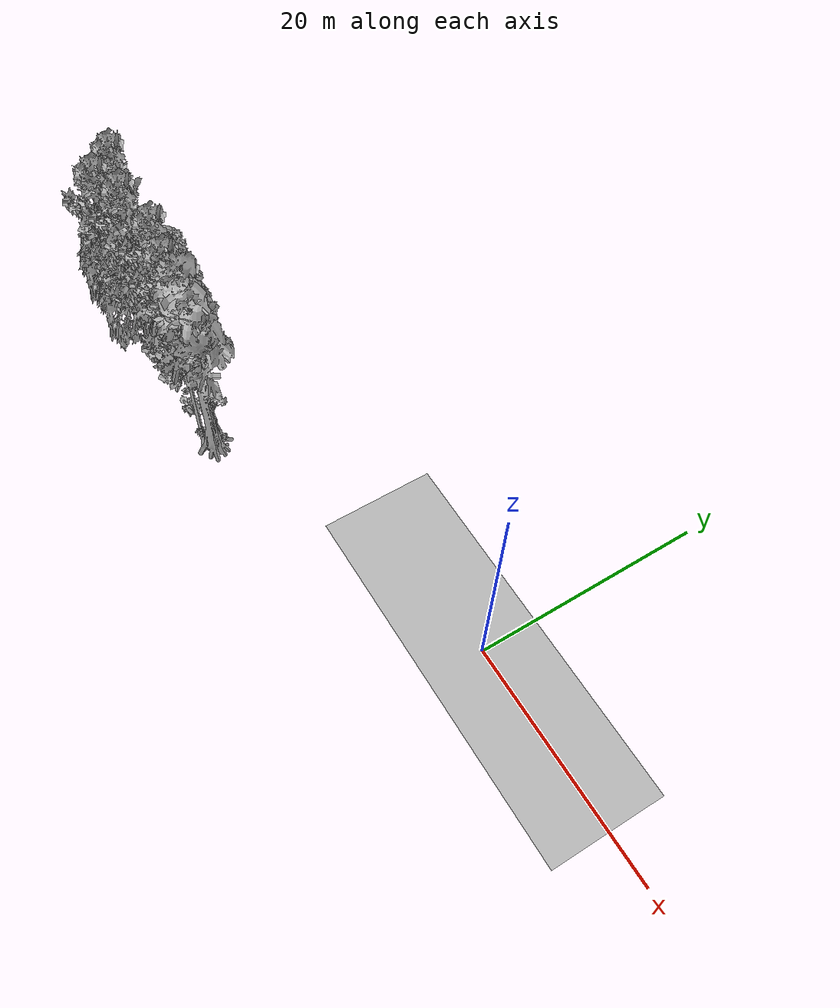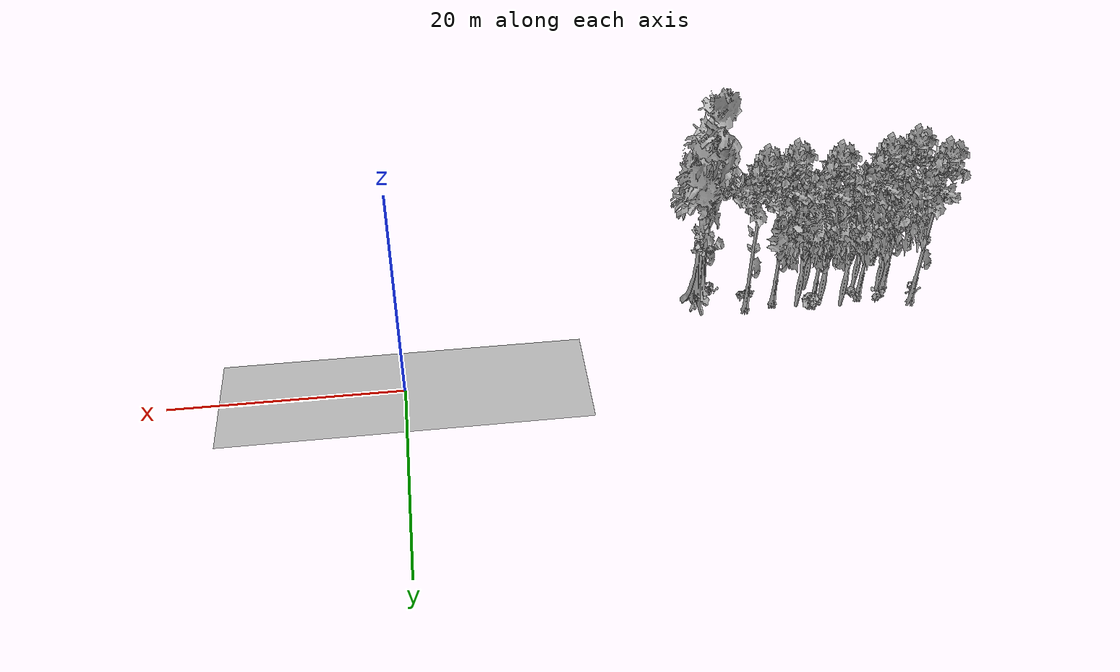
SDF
<sdf version="1.7">
 <world name="default">
  <model name="ground_plane">
   <static>1</static>
   <link name="link">
    <collision name="collision">
     <geometry><plane><normal>0 0 1</normal><size>100 100</size></plane></geometry>
     <surface><contact><ode><min_depth>0.01</min_depth><max_vel>0</max_vel></ode></contact></surface>
    </collision>
    <visual name="grass">
     <cast_shadows>0</cast_shadows>
     <geometry>
      <mesh>
       <scale>0.5814285714285714 0.18142857142857144 0.1</scale>
       <uri>file://grass_plane/meshes/grass_plane.dae</uri>
      </mesh>
     </geometry>
    </visual>
   </link>
  </model>
  <model name="Tree 23">
   <static>1</static>
   <pose>-28.04856181168212 -9.812862575359784 0 1.57079 -0 0</pose>
   <link name="link">
    <collision name="collision">
     <geometry><mesh><scale>3.5 5 3.5</scale><uri>model://tree_9/meshes/tree_9.obj</uri></mesh></geometry>
    </collision>
    <visual name="visual">
     <geometry><mesh><scale>3.5 5 3.5</scale><uri>model://tree_9/meshes/tree_9.obj</uri></mesh></geometry>
    </visual>
   </link>
  </model>
  <model name="Tree 100">
   <static>1</static>
   <pose>-27.38944371867749 -9.04333342087028 0 1.57079 -0 0</pose>
   <link name="link">
    <collision name="collision">
     <geometry><mesh><scale>3.5 5 3.5</scale><uri>model://tree_4/meshes/tree_4.obj</uri></mesh></geometry>
    </collision>
    <visual name="visual">
     <geometry><mesh><scale>3.5 5 3.5</scale><uri>model://tree_4/meshes/tree_4.obj</uri></mesh></geometry>
    </visual>
   </link>
  </model>
  <model name="Tree 107">
   <static>1</static>
   <pose>-34.437926285458566 -8.02422393529767 0 1.57079 -0 0</pose>
   <link name="link">
    <collision name="collision">
     <geometry><mesh><scale>3.5 5 3.5</scale><uri>model://tree_9/meshes/tree_9.obj</uri></mesh></geometry>
    </collision>
    <visual name="visual">
     <geometry><mesh><scale>3.5 5 3.5</scale><uri>model://tree_9/meshes/tree_9.obj</uri></mesh></geometry>
    </visual>
   </link>
  </model>
  <model name="Tree 142">
   <static>1</static>
   <pose>-38.720768022775204 -7.116174014996498 0 1.57079 -0 0</pose>
   <link name="link">
    <collision name="collision">
     <geometry><mesh><scale>3.5 5 3.5</scale><uri>model://tree_2/meshes/tree_2.obj</uri></mesh></geometry>
    </collision>
    <visual name="visual">
     <geometry><mesh><scale>3.5 5 3.5</scale><uri>model://tree_2/meshes/tree_2.obj</uri></mesh></geometry>
    </visual>
   </link>
  </model>
  <model name="Tree 144">
   <static>1</static>
   <pose>-44.6907328518165 -8.433108655998256 0 1.57079 -0 0</pose>
   <link name="link">
    <collision name="collision">
     <geometry><mesh><scale>3.5 5 3.5</scale><uri>model://tree_2/meshes/tree_2.obj</uri></mesh></geometry>
    </collision>
    <visual name="visual">
     <geometry><mesh><scale>3.5 5 3.5</scale><uri>model://tree_2/meshes/tree_2.obj</uri></mesh></geometry>
    </visual>
   </link>
  </model>
  <model name="Tree 145">
   <static>1</static>
   <pose>-36.53992351157194 -7.176319301843568 0 1.57079 -0 0</pose>
   <link name="link">
    <collision name="collision">
     <geometry><mesh><scale>3.5 5 3.5</scale><uri>model://tree_2/meshes/tree_2.obj</uri></mesh></geometry>
    </collision>
    <visual name="visual">
     <geometry><mesh><scale>3.5 5 3.5</scale><uri>model://tree_2/meshes/tree_2.obj</uri></mesh></geometry>
    </visual>
   </link>
  </model>
  <model name="Tree 150">
   <static>1</static>
   <pose>-38.094714004257625 -7.364880866374214 0 1.57079 -0 0</pose>
   <link name="link">
    <collision name="collision">
     <geometry><mesh><scale>3.5 5 3.5</scale><uri>model://tree_9/meshes/tree_9.obj</uri></mesh></geometry>
    </collision>
    <visual name="visual">
     <geometry><mesh><scale>3.5 5 3.5</scale><uri>model://tree_9/meshes/tree_9.obj</uri></mesh></geometry>
    </visual>
   </link>
  </model>
  <model name="Tree 176">
   <static>1</static>
   <pose>-31.70182812146802 -7.496033898375753 0 1.57079 -0 0</pose>
   <link name="link">
    <collision name="collision">
     <geometry><mesh><scale>3.5 5 3.5</scale><uri>model://tree_9/meshes/tree_9.obj</uri></mesh></geometry>
    </collision>
    <visual name="visual">
     <geometry><mesh><scale>3.5 5 3.5</scale><uri>model://tree_9/meshes/tree_9.obj</uri></mesh></geometry>
    </visual>
   </link>
  </model>
  <model name="Tree 182">
   <static>1</static>
   <pose>-47.43688102038932 -6.821704241520871 0 1.57079 -0 0</pose>
   <link name="link">
    <collision name="collision">
     <geometry><mesh><scale>3.5 5 3.5</scale><uri>model://tree_9/meshes/tree_9.obj</uri></mesh></geometry>
    </collision>
    <visual name="visual">
     <geometry><mesh><scale>3.5 5 3.5</scale><uri>model://tree_9/meshes/tree_9.obj</uri></mesh></geometry>
    </visual>
   </link>
  </model>
  <model name="Tree 234">
   <static>1</static>
   <pose>-45.53571208736912 -9.115218826406267 0 1.57079 -0 0</pose>
   <link name="link">
    <collision name="collision">
     <geometry><mesh><scale>3.5 5 3.5</scale><uri>model://tree_9/meshes/tree_9.obj</uri></mesh></geometry>
    </collision>
    <visual name="visual">
     <geometry><mesh><scale>3.5 5 3.5</scale><uri>model://tree_9/meshes/tree_9.obj</uri></mesh></geometry>
    </visual>
   </link>
  </model>
  <model name="Tree 254">
   <static>1</static>
   <pose>-40.629854869542356 -6.7492296716630005 0 1.57079 -0 0</pose>
   <link name="link">
    <collision name="collision">
     <geometry><mesh><scale>3.5 5 3.5</scale><uri>model://tree_2/meshes/tree_2.obj</uri></mesh></geometry>
    </collision>
    <visual name="visual">
     <geometry><mesh><scale>3.5 5 3.5</scale><uri>model://tree_2/meshes/tree_2.obj</uri></mesh></geometry>
    </visual>
   </link>
  </model>
  <model name="Tree 255">
   <static>1</static>
   <pose>-42.68614607503526 -7.990714010286329 0 1.57079 -0 0</pose>
   <link name="link">
    <collision name="collision">
     <geometry><mesh><scale>3.5 5 3.5</scale><uri>model://tree_9/meshes/tree_9.obj</uri></mesh></geometry>
    </collision>
    <visual name="visual">
     <geometry><mesh><scale>3.5 5 3.5</scale><uri>model://tree_9/meshes/tree_9.obj</uri></mesh></geometry>
    </visual>
   </link>
  </model>
  <model name="Tree 383">
   <static>1</static>
   <pose>-37.98099963188599 -9.53557228312613 0 1.57079 -0 0</pose>
   <link name="link">
    <collision name="collision">
     <geometry><mesh><scale>3.5 5 3.5</scale><uri>model://tree_2/meshes/tree_2.obj</uri></mesh></geometry>
    </collision>
    <visual name="visual">
     <geometry><mesh><scale>3.5 5 3.5</scale><uri>model://tree_2/meshes/tree_2.obj</uri></mesh></geometry>
    </visual>
   </link>
  </model>
  <model name="Tree 420">
   <static>1</static>
   <pose>-42.69660691430984 -9.323350493498804 0 1.57079 -0 0</pose>
   <link name="link">
    <collision name="collision">
     <geometry><mesh><scale>3.5 5 3.5</scale><uri>model://tree_2/meshes/tree_2.obj</uri></mesh></geometry>
    </collision>
    <visual name="visual">
     <geometry><mesh><scale>3.5 5 3.5</scale><uri>model://tree_2/meshes/tree_2.obj</uri></mesh></geometry>
    </visual>
   </link>
  </model>
  <model name="Bush 67">
   <static>1</static>
   <pose>-41.87051907291067 -7.93763457808141 0 1.57079 -0 0</pose>
   <link name="link">
    <collision name="collision">
     <geometry><mesh><scale>2 2 2</scale><uri>model://bush_3/meshes/bush_3.obj</uri></mesh></geometry>
     <surface><contact><collide_without_contact>false</collide_without_contact></contact></surface>
    </collision>
    <visual name="visual">
     <geometry><mesh><scale>2 2 2</scale><uri>model://bush_3/meshes/bush_3.obj</uri></mesh></geometry>
    </visual>
   </link>
  </model>
  <model name="Bush 70">
   <static>1</static>
   <pose>-31.784457031148833 -9.224915174088341 0 1.57079 -0 0</pose>
   <link name="link">
    <collision name="collision">
     <geometry><mesh><scale>2 2 2</scale><uri>model://bush_2/meshes/bush_2.obj</uri></mesh></geometry>
     <surface><contact><collide_without_contact>false</collide_without_contact></contact></surface>
    </collision>
    <visual name="visual">
     <geometry><mesh><scale>2 2 2</scale><uri>model://bush_2/meshes/bush_2.obj</uri></mesh></geometry>
    </visual>
   </link>
  </model>
  <model name="Bush 148">
   <static>1</static>
   <pose>-43.870172665662515 -6.713072541379168 0 1.57079 -0 0</pose>
   <link name="link">
    <collision name="collision">
     <geometry><mesh><scale>2 2 2</scale><uri>model://bush_0/meshes/bush_0.obj</uri></mesh></geometry>
     <surface><contact><collide_without_contact>false</collide_without_contact></contact></surface>
    </collision>
    <visual name="visual">
     <geometry><mesh><scale>2 2 2</scale><uri>model://bush_0/meshes/bush_0.obj</uri></mesh></geometry>
    </visual>
   </link>
  </model>
  <model name="Bush 185">
   <static>1</static>
   <pose>-27.36854986178033 -8.56391185231578 0 1.57079 -0 0</pose>
   <link name="link">
    <collision name="collision">
     <geometry><mesh><scale>2 2 2</scale><uri>model://bush_4/meshes/bush_4.obj</uri></mesh></geometry>
     <surface><contact><collide_without_contact>false</collide_without_contact></contact></surface>
    </collision>
    <visual name="visual">
     <geometry><mesh><scale>2 2 2</scale><uri>model://bush_4/meshes/bush_4.obj</uri></mesh></geometry>
    </visual>
   </link>
  </model>
  <model name="Bush 189">
   <static>1</static>
   <pose>-32.40829162043363 -9.416507245272843 0 1.57079 -0 0</pose>
   <link name="link">
    <collision name="collision">
     <geometry><mesh><scale>2 2 2</scale><uri>model://bush_2/meshes/bush_2.obj</uri></mesh></geometry>
     <surface><contact><collide_without_contact>false</collide_without_contact></contact></surface>
    </collision>
    <visual name="visual">
     <geometry><mesh><scale>2 2 2</scale><uri>model://bush_2/meshes/bush_2.obj</uri></mesh></geometry>
    </visual>
   </link>
  </model>
  <model name="Bush 234">
   <static>1</static>
   <pose>-47.65983642132157 -7.455378987083394 0 1.57079 -0 0</pose>
   <link name="link">
    <collision name="collision">
     <geometry><mesh><scale>2 2 2</scale><uri>model://bush_4/meshes/bush_4.obj</uri></mesh></geometry>
     <surface><contact><collide_without_contact>false</collide_without_contact></contact></surface>
    </collision>
    <visual name="visual">
     <geometry><mesh><scale>2 2 2</scale><uri>model://bush_4/meshes/bush_4.obj</uri></mesh></geometry>
    </visual>
   </link>
  </model>
  <model name="Bush 259">
   <static>1</static>
   <pose>-37.562351284165516 -6.785681757263006 0 1.57079 -0 0</pose>
   <link name="link">
    <collision name="collision">
     <geometry><mesh><scale>2 2 2</scale><uri>model://bush_1/meshes/bush_1.obj</uri></mesh></geometry>
     <surface><contact><collide_without_contact>false</collide_without_contact></contact></surface>
    </collision>
    <visual name="visual">
     <geometry><mesh><scale>2 2 2</scale><uri>model://bush_1/meshes/bush_1.obj</uri></mesh></geometry>
    </visual>
   </link>
  </model>
  <model name="Bush 319">
   <static>1</static>
   <pose>-28.782677486217647 -9.692102038009356 0 1.57079 -0 0</pose>
   <link name="link">
    <collision name="collision">
     <geometry><mesh><scale>2 2 2</scale><uri>model://bush_4/meshes/bush_4.obj</uri></mesh></geometry>
     <surface><contact><collide_without_contact>false</collide_without_contact></contact></surface>
    </collision>
    <visual name="visual">
     <geometry><mesh><scale>2 2 2</scale><uri>model://bush_4/meshes/bush_4.obj</uri></mesh></geometry>
    </visual>
   </link>
  </model>
 </world>
</sdf>
